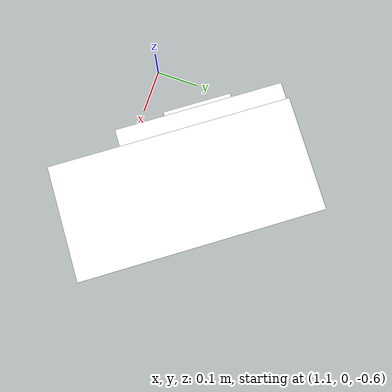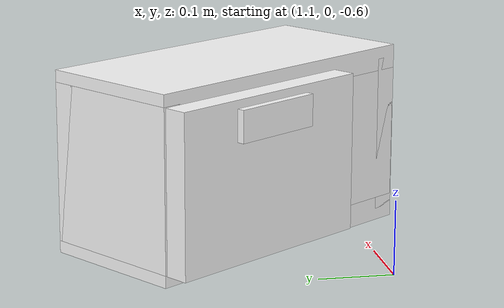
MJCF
<mujoco model="cabinet">
    <compiler angle="radian" eulerseq='zxy' />
    <option gravity = "0 0 0" />
    <option>
        <flag contact = "disable"/>
    </option>
    <statistic	extent="1.0" center="0.0 0.0 0.0"/>
    <visual>
        <map fogstart="3" fogend="5" force="0.1" znear=" 0.100000 " zfar=" 12.000000 "/>
    </visual>
    <size njmax="500" nconmax="100" />
    <actuator>
        <velocity joint="bottom_left_hinge" name="viva_revolution" kv='10'></velocity>
    </actuator>
    <asset>
        <texture builtin="flat" name="tabletex" height="32" width="32" rgb1="1 1 1" type="cube"></texture>
        <texture builtin="flat" name="objtex" height="32" width="32" rgb1="1 1 1" type="cube"></texture>
        <texture builtin="flat" name="handletex" height="32" width="32" rgb1="1 1 1" type="cube"></texture>
        <texture builtin="flat" name="wallpaper" height="32" width="32" rgb1="1 1 1" type="cube"></texture>
        <texture builtin="flat" name="kp" height="32" width="32" rgb1="1 1 1" type="cube"></texture>
        <material name="geomTable" shininess="0.03" specular="0.75" texture="tabletex"></material>
        <material name="geomObj" shininess="0.03" specular="0.75" texture="objtex"></material>
        <material name="geomHandle" shininess="0.03" specular="0.75" texture="handletex"></material>
        <material name="bg" shininess="0.03" specular="0.75" texture="wallpaper"></material>
        <material name="geomKeypad" shininess="0.03" specular="0.75" texture="kp"></material>
    </asset>
    <worldbody>
        <body name="cabinet_bottom" pos= " 1.373798 0.165990 -0.603220 "  quat= " -0.305472 0.000000 0.000000 0.952201" >
            <inertial pos="0 0 0" mass="1" diaginertia="1 1 1" />
            <geom size= " 0.106469 0.228301 0.016942 "  type="box" material="geomObj" name="b"/>
            <body name="cabinet_left" pos= " 0.000000 -0.211359 0.112162 " >
                <inertial pos="0 0 0" mass="1" diaginertia="1 1 1" />
                <geom size= " 0.106469 0.016942 0.112162 "  type="box" material="geomObj" name="c" />
            </body>
            <body name="cabinet_right" pos= " 0.000000 0.211359 0.112162 " >
                <inertial pos="0 0 0" mass="1" diaginertia="1 1 1" />
                <geom size= " 0.106469 0.016942 0.112162 "  type="box" material="geomObj" name="d" />
            </body>
            <body name="cabinet_top" pos= " 0.000000 0.000000 0.224323 " >
                <inertial pos="0 0 0" mass="1" diaginertia="1 1 1" />
                <geom size= " 0.106469 0.228301 0.016942 "  type="box" material="geomObj" name="e"/>
            </body>
            <body name="cabinet_back" pos= " -0.089527 0.000000 0.112162 "  >
                <inertial pos="0 0 0" mass="1" diaginertia="1 1 1" />
                <geom size= " 0.016942 0.228301 0.112162 "  type="box" material="geomObj" name="f" />
            </body>
            <body name="cabinet_keypad" pos= " 0.016942 0.160802 0.112162 " >
                <inertial pos="0 0 0" mass="1" diaginertia="1 1 1" />
                <geom size= " 0.089527 0.066499 0.095220 "  type="box" material="geomKeypad" name="keypizzlemynizzle" />
            </body>
            <body name="cabinet_left_hinge" pos= " 0.106469 -0.066499 0.000000 " >
                <inertial pos= " 0.020000 0.000000 0.112162 "  mass="1" diaginertia="1 1 1" />
                <joint name="bottom_left_hinge" type="hinge" pos="0 0 0" axis="0 1 0" limited="true" range= "0 2.3"  />
                <geom size= " 0.016942 0.161802 0.112162 "  pos= " 0.020000 0.000000 0.112162 "  type="box" material="geomObj" name="g"/>
                <body name="handle_link" pos= " 0.026617 0.000000 0.190440 " >
                    <inertial pos="0 0 0" mass="1" diaginertia="1 1 1" />
                    <geom size= " 0.021272 0.066499 0.022306 "  type="box" material="geomHandle" name="h"/>
                </body>
            </body>
        </body>
        <body name="external_camera_body_0" pos="0.0 0 0.00">
            <camera euler="-1.57 1.57 0.0" fovy=" 54.280851 " name="external_camera_0" pos="0.0 0 0"></camera>
            <inertial pos= " 0.00 0.0 0.000000 " mass="1" diaginertia="1 1 1" />
            <joint name="cam_j" pos="0.0 0 0" axis = "1 0 0" type="free" />
        </body>
    </worldbody>
</mujoco>
